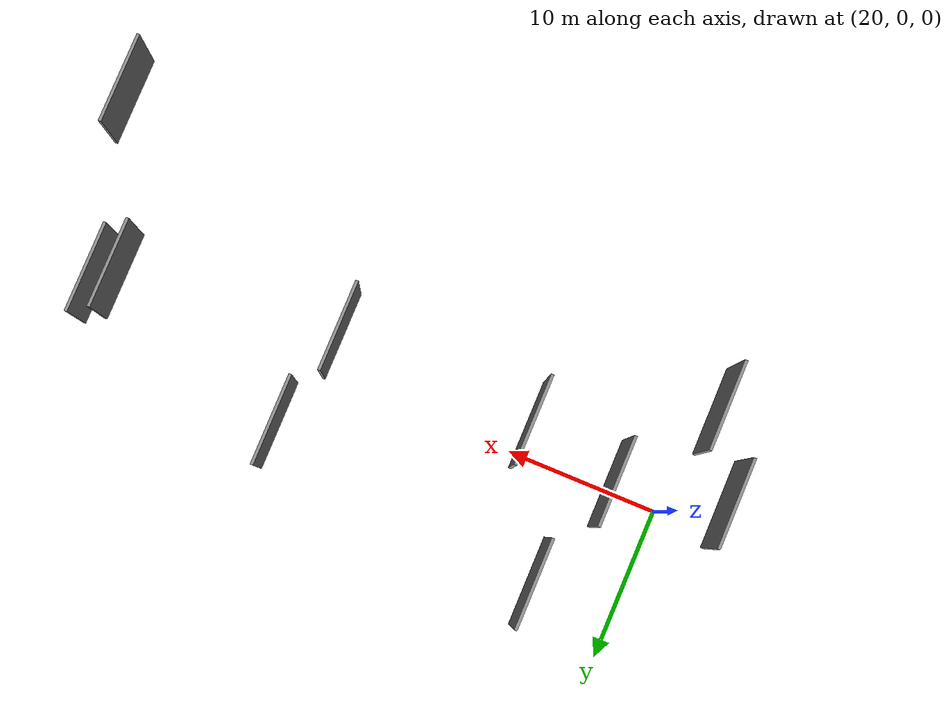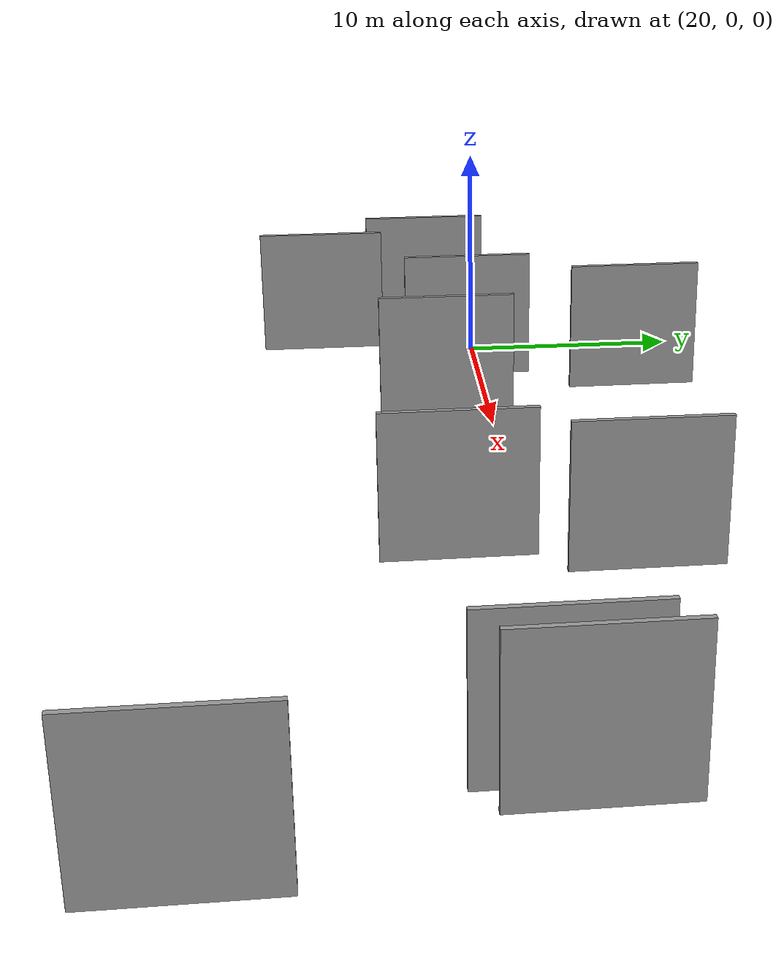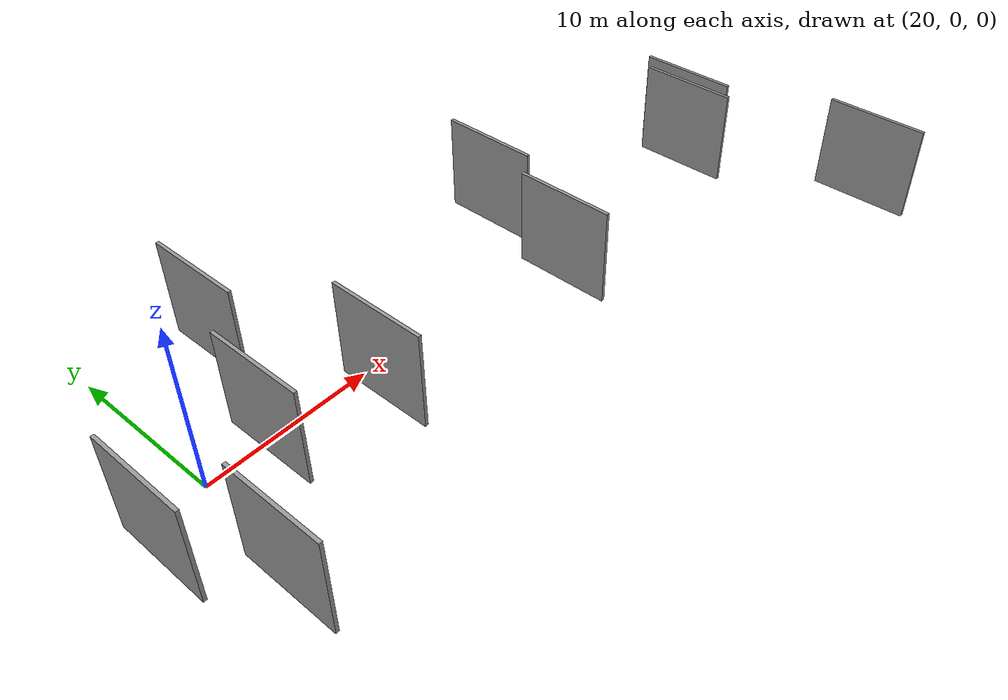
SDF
<sdf version="1.6">
 <world name="default">
  <scene>
   <sky><clouds><speed>12</speed></clouds></sky>
   <ambient>0.4 0.4 0.4 1</ambient>
   <background>0.7 0.7 0.7 1</background>
   <shadows>1</shadows>
  </scene>
  <gravity>0 0 -9.8066</gravity>
  <magnetic_field>6e-06 2.3e-05 -4.2e-05</magnetic_field>
  <physics default="0" name="default_physics" type="ode">
   <ode>
    <solver>
     <type>quick</type>
     <iters>10</iters>
     <sor>1.0</sor>
     <use_dynamic_moi_rescaling>0</use_dynamic_moi_rescaling>
    </solver>
    <constraints>
     <cfm>0</cfm>
     <erp>0.2</erp>
     <contact_max_correcting_vel>100</contact_max_correcting_vel>
     <contact_surface_layer>0.001</contact_surface_layer>
    </constraints>
   </ode>
   <max_step_size>0.004</max_step_size>
   <real_time_factor>1</real_time_factor>
   <real_time_update_rate>250</real_time_update_rate>
  </physics>
  <light name="sun" type="directional">
   <pose>0 0 10 0 0 0</pose>
   <diffuse>0.8 0.8 0.8 1</diffuse>
   <specular>0.2 0.2 0.2 1</specular>
   <attenuation>
    <range>1000</range>
    <constant>0.9</constant>
    <linear>0.01</linear>
    <quadratic>0.001</quadratic>
   </attenuation>
   <direction>-0.5 0.1 -0.9</direction>
  </light>
  <model name="grey_wall_1">
   <static>1</static>
   <pose>25.7436 7.1776 0.0 0.000000 0.000000 1.570796</pose>
   <link name="link">
    <pose>0 0 3.00 0 0 0</pose>
    <collision name="collision"><geometry><box><size>6.00 0.2 6.00</size></box></geometry></collision>
    <visual name="visual">
     <cast_shadows>0</cast_shadows>
     <geometry><box><size>6.00 0.2 6.00</size></box></geometry>
     <material>
      <script>
       <uri>model://grey_wall/materials/scripts</uri>
       <uri>model://grey_wall/materials/textures</uri>
       <name>vrc/grey_wall</name>
      </script>
     </material>
    </visual>
   </link>
  </model>
  <model name="grey_wall_2">
   <static>1</static>
   <pose>18.9411 -7.4352 0.0 0.000000 0.000000 1.570796</pose>
   <link name="link">
    <pose>0 0 3.00 0 0 0</pose>
    <collision name="collision"><geometry><box><size>6.00 0.2 6.00</size></box></geometry></collision>
    <visual name="visual">
     <cast_shadows>0</cast_shadows>
     <geometry><box><size>6.00 0.2 6.00</size></box></geometry>
     <material>
      <script>
       <uri>model://grey_wall/materials/scripts</uri>
       <uri>model://grey_wall/materials/textures</uri>
       <name>vrc/grey_wall</name>
      </script>
     </material>
    </visual>
   </link>
  </model>
  <model name="grey_wall_3">
   <static>1</static>
   <pose>61.5057 -11.7428 0.0 0.000000 0.000000 1.570796</pose>
   <link name="link">
    <pose>0 0 3.00 0 0 0</pose>
    <collision name="collision"><geometry><box><size>6.00 0.2 6.00</size></box></geometry></collision>
    <visual name="visual">
     <cast_shadows>0</cast_shadows>
     <geometry><box><size>6.00 0.2 6.00</size></box></geometry>
     <material>
      <script>
       <uri>model://grey_wall/materials/scripts</uri>
       <uri>model://grey_wall/materials/textures</uri>
       <name>vrc/grey_wall</name>
      </script>
     </material>
    </visual>
   </link>
  </model>
  <model name="grey_wall_4">
   <static>1</static>
   <pose>57.4518 -0.8443 0.0 0.000000 0.000000 1.570796</pose>
   <link name="link">
    <pose>0 0 3.00 0 0 0</pose>
    <collision name="collision"><geometry><box><size>6.00 0.2 6.00</size></box></geometry></collision>
    <visual name="visual">
     <cast_shadows>0</cast_shadows>
     <geometry><box><size>6.00 0.2 6.00</size></box></geometry>
     <material>
      <script>
       <uri>model://grey_wall/materials/scripts</uri>
       <uri>model://grey_wall/materials/textures</uri>
       <name>vrc/grey_wall</name>
      </script>
     </material>
    </visual>
   </link>
  </model>
  <model name="grey_wall_5">
   <static>1</static>
   <pose>29.5533 -2.0292 0.0 0.000000 0.000000 1.570796</pose>
   <link name="link">
    <pose>0 0 3.00 0 0 0</pose>
    <collision name="collision"><geometry><box><size>6.00 0.2 6.00</size></box></geometry></collision>
    <visual name="visual">
     <cast_shadows>0</cast_shadows>
     <geometry><box><size>6.00 0.2 6.00</size></box></geometry>
     <material>
      <script>
       <uri>model://grey_wall/materials/scripts</uri>
       <uri>model://grey_wall/materials/textures</uri>
       <name>vrc/grey_wall</name>
      </script>
     </material>
    </visual>
   </link>
  </model>
  <model name="grey_wall_6">
   <static>1</static>
   <pose>23.4481 -0.5166 0.0 0.000000 0.000000 1.570796</pose>
   <link name="link">
    <pose>0 0 3.00 0 0 0</pose>
    <collision name="collision"><geometry><box><size>6.00 0.2 6.00</size></box></geometry></collision>
    <visual name="visual">
     <cast_shadows>0</cast_shadows>
     <geometry><box><size>6.00 0.2 6.00</size></box></geometry>
     <material>
      <script>
       <uri>model://grey_wall/materials/scripts</uri>
       <uri>model://grey_wall/materials/textures</uri>
       <name>vrc/grey_wall</name>
      </script>
     </material>
    </visual>
   </link>
  </model>
  <model name="grey_wall_7">
   <static>1</static>
   <pose>58.6255 -0.0545 0.0 0.000000 0.000000 1.570796</pose>
   <link name="link">
    <pose>0 0 3.00 0 0 0</pose>
    <collision name="collision"><geometry><box><size>6.00 0.2 6.00</size></box></geometry></collision>
    <visual name="visual">
     <cast_shadows>0</cast_shadows>
     <geometry><box><size>6.00 0.2 6.00</size></box></geometry>
     <material>
      <script>
       <uri>model://grey_wall/materials/scripts</uri>
       <uri>model://grey_wall/materials/textures</uri>
       <name>vrc/grey_wall</name>
      </script>
     </material>
    </visual>
   </link>
  </model>
  <model name="grey_wall_8">
   <static>1</static>
   <pose>44.3705 4.1735 0.0 0.000000 0.000000 1.570796</pose>
   <link name="link">
    <pose>0 0 3.00 0 0 0</pose>
    <collision name="collision"><geometry><box><size>6.00 0.2 6.00</size></box></geometry></collision>
    <visual name="visual">
     <cast_shadows>0</cast_shadows>
     <geometry><box><size>6.00 0.2 6.00</size></box></geometry>
     <material>
      <script>
       <uri>model://grey_wall/materials/scripts</uri>
       <uri>model://grey_wall/materials/textures</uri>
       <name>vrc/grey_wall</name>
      </script>
     </material>
    </visual>
   </link>
  </model>
  <model name="grey_wall_9">
   <static>1</static>
   <pose>16.2514 -2.0770 0.0 0.000000 0.000000 1.570796</pose>
   <link name="link">
    <pose>0 0 3.00 0 0 0</pose>
    <collision name="collision"><geometry><box><size>6.00 0.2 6.00</size></box></geometry></collision>
    <visual name="visual">
     <cast_shadows>0</cast_shadows>
     <geometry><box><size>6.00 0.2 6.00</size></box></geometry>
     <material>
      <script>
       <uri>model://grey_wall/materials/scripts</uri>
       <uri>model://grey_wall/materials/textures</uri>
       <name>vrc/grey_wall</name>
      </script>
     </material>
    </visual>
   </link>
  </model>
  <model name="grey_wall_10">
   <static>1</static>
   <pose>42.8544 -2.7272 0.0 0.000000 0.000000 1.570796</pose>
   <link name="link">
    <pose>0 0 3.00 0 0 0</pose>
    <collision name="collision"><geometry><box><size>6.00 0.2 6.00</size></box></geometry></collision>
    <visual name="visual">
     <cast_shadows>0</cast_shadows>
     <geometry><box><size>6.00 0.2 6.00</size></box></geometry>
     <material>
      <script>
       <uri>model://grey_wall/materials/scripts</uri>
       <uri>model://grey_wall/materials/textures</uri>
       <name>vrc/grey_wall</name>
      </script>
     </material>
    </visual>
   </link>
  </model>
 </world>
</sdf>
